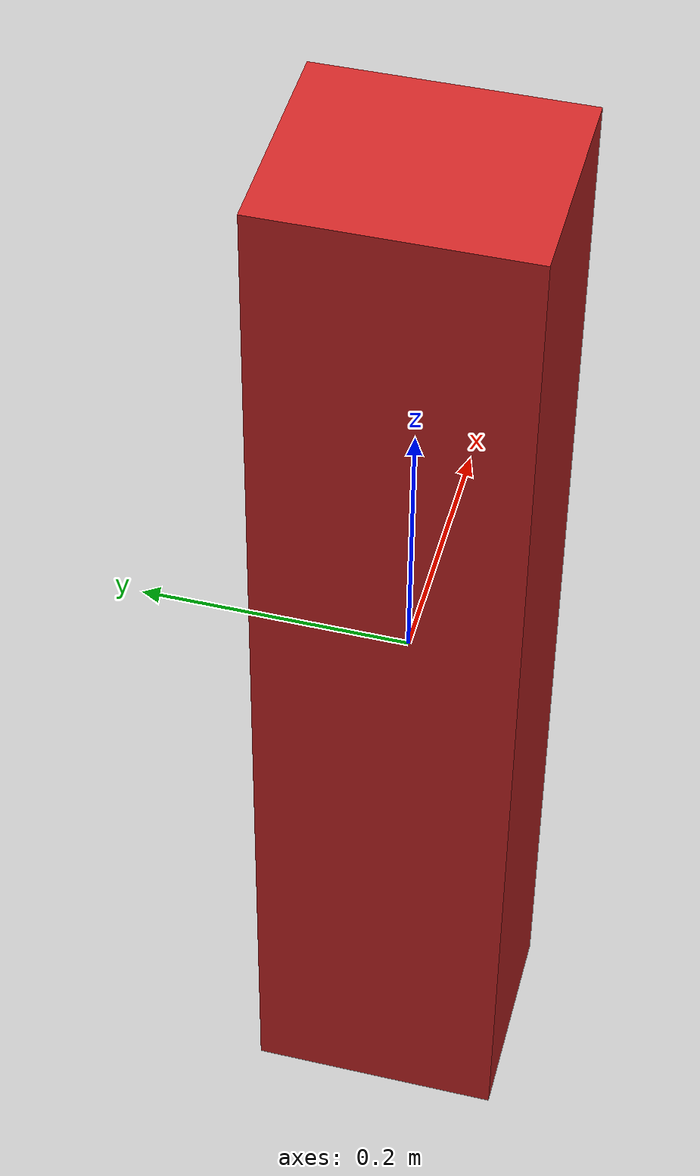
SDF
<?xml version='1.0'?>
<sdf version="1.4">
<model name="fst_rig_base">
  <static>true</static>
    <static>true</static>
    <link name="link">
      <collision name="collision_fst_rig">
        <geometry>
          <box>
            <size>0.16 0.19 0.86</size>
          </box>
        </geometry>
      </collision>
      <visual name="visual_fst_rig">
        <geometry>
          <box>
            <size>0.16 0.19 0.86</size>
          </box>
        </geometry>
        <material>
          <script>
            <uri>file://media/materials/scripts/gazebo.material</uri>
            <name>Gazebo/Red</name>
          </script>
        </material>
      </visual>
    </link>
  </model>
</sdf>
